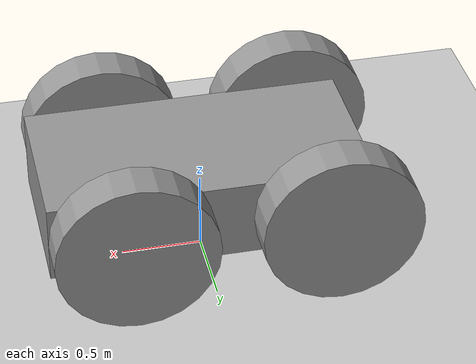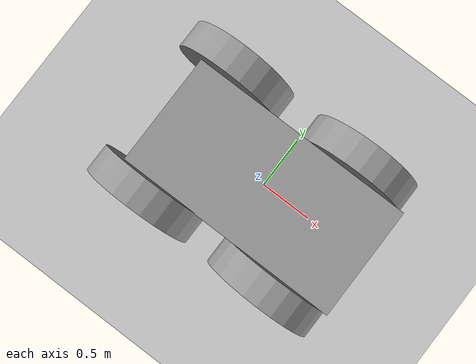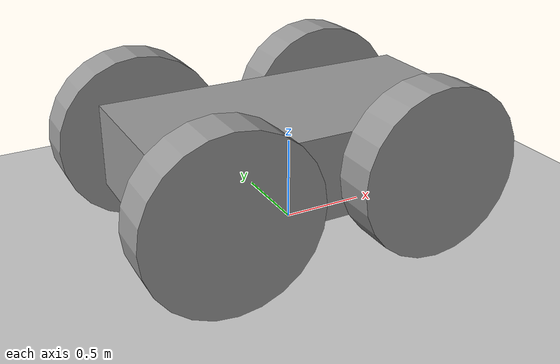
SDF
<sdf version="1.7">
 <world name="default">
  <light name="sun" type="directional">
   <pose>0 0 10 0 -0 0</pose>
   <diffuse>0.8 0.8 0.8 1</diffuse>
   <specular>0.2 0.2 0.2 1</specular>
   <attenuation>
    <range>1000</range>
    <constant>0.9</constant>
    <linear>0.01</linear>
    <quadratic>0.001</quadratic>
   </attenuation>
   <direction>-0.5 0.1 -0.9</direction>
   <spot><inner_angle>0</inner_angle><outer_angle>0</outer_angle><falloff>0</falloff></spot>
  </light>
  <model name="ground_plane">
   <static>1</static>
   <link name="link">
    <collision name="collision">
     <geometry><plane><normal>0 0 1</normal><size>100 100</size></plane></geometry>
     <surface>
      <contact><collide_bitmask>65535</collide_bitmask></contact>
      <friction><ode><mu>100</mu><mu2>50</mu2></ode></friction>
     </surface>
    </collision>
    <visual name="visual">
     <cast_shadows>0</cast_shadows>
     <geometry><plane><normal>0 0 1</normal><size>100 100</size></plane></geometry>
     <material>
      <script><uri>file://media/materials/scripts/gazebo.material</uri><name>Gazebo/Grey</name></script>
     </material>
    </visual>
   </link>
  </model>
  <gravity>0 0 -9.8</gravity>
  <magnetic_field>6e-06 2.3e-05 -4.2e-05</magnetic_field>
  <atmosphere type="adiabatic"/>
  <physics type="ode">
   <max_step_size>0.001</max_step_size>
   <real_time_factor>1</real_time_factor>
   <real_time_update_rate>1000</real_time_update_rate>
  </physics>
  <scene><ambient>0.4 0.4 0.4 1</ambient><background>0.7 0.7 0.7 1</background><shadows>1</shadows></scene>
  <audio><device>default</device></audio>
  <spherical_coordinates>
   <surface_model>EARTH_WGS84</surface_model>
   <latitude_deg>0</latitude_deg>
   <longitude_deg>0</longitude_deg>
   <elevation>0</elevation>
   <heading_deg>0</heading_deg>
  </spherical_coordinates>
  <model name="carModel">
   <link name="link">
    <inertial>
     <mass>1</mass>
     <inertia>
      <ixx>0.166667</ixx>
      <ixy>0</ixy>
      <ixz>0</ixz>
      <iyy>0.166667</iyy>
      <iyz>0</iyz>
      <izz>0.166667</izz>
     </inertia>
    </inertial>
    <visual name="visual">
     <geometry><box><size>2 1 0.5</size></box></geometry>
     <material>
      <script><name>Gazebo/Grey</name><uri>file://media/materials/scripts/gazebo.material</uri></script>
      <shader type="pixel"><normal_map>__default__</normal_map></shader>
      <ambient>0.3 0.3 0.3 1</ambient>
      <diffuse>0.7 0.7 0.7 1</diffuse>
      <specular>0.01 0.01 0.01 1</specular>
      <emissive>0 0 0 1</emissive>
     </material>
    </visual>
    <collision name="collision">
     <geometry><box><size>2 1 0.5</size></box></geometry>
     <surface>
      <friction>
       <ode><mu>1</mu><mu2>1</mu2><fdir1>0 0 0</fdir1><slip1>0</slip1><slip2>0</slip2></ode>
       <torsional>
        <coefficient>1</coefficient>
        <patch_radius>0</patch_radius>
        <surface_radius>0</surface_radius>
        <use_patch_radius>1</use_patch_radius>
        <ode><slip>0</slip></ode>
       </torsional>
      </friction>
      <bounce><restitution_coefficient>0</restitution_coefficient><threshold>1e+06</threshold></bounce>
      <contact>
       <collide_without_contact>0</collide_without_contact>
       <collide_without_contact_bitmask>1</collide_without_contact_bitmask>
       <collide_bitmask>1</collide_bitmask>
       <ode>
        <soft_cfm>0</soft_cfm>
        <soft_erp>0.2</soft_erp>
        <kp>1e+13</kp>
        <kd>1</kd>
        <max_vel>0.01</max_vel>
        <min_depth>0</min_depth>
       </ode>
       <bullet>
        <split_impulse>1</split_impulse>
        <split_impulse_penetration_threshold>-0.01</split_impulse_penetration_threshold>
        <soft_cfm>0</soft_cfm>
        <soft_erp>0.2</soft_erp>
        <kp>1e+13</kp>
        <kd>1</kd>
       </bullet>
      </contact>
     </surface>
    </collision>
   </link>
   <link name="link_0">
    <inertial>
     <mass>1</mass>
     <inertia><ixx>0.145833</ixx><ixy>0</ixy><ixz>0</ixz><iyy>0.145833</iyy><iyz>0</iyz><izz>0.125</izz></inertia>
    </inertial>
    <pose>-0.729219 -0.619535 -0 0 -0 0</pose>
    <visual name="visual">
     <pose>0 0 0 1.5707 -0 0</pose>
     <geometry><cylinder><radius>0.5</radius><length>0.25</length></cylinder></geometry>
     <material>
      <lighting>1</lighting>
      <script><uri>file://media/materials/scripts/gazebo.material</uri><name>Gazebo/Grey</name></script>
      <shader type="pixel"><normal_map>__default__</normal_map></shader>
      <ambient>0.3 0.3 0.3 1</ambient>
      <diffuse>0.7 0.7 0.7 1</diffuse>
      <specular>0.01 0.01 0.01 1</specular>
      <emissive>0 0 0 1</emissive>
     </material>
    </visual>
    <collision name="collision">
     <pose>0 0 0 1.5707 -0 0</pose>
     <geometry><cylinder><radius>0.5</radius><length>0.25</length></cylinder></geometry>
     <surface>
      <friction>
       <ode><mu>1</mu><mu2>1</mu2><fdir1>0 0 0</fdir1><slip1>0</slip1><slip2>0</slip2></ode>
       <torsional>
        <coefficient>1</coefficient>
        <patch_radius>0</patch_radius>
        <surface_radius>0</surface_radius>
        <use_patch_radius>1</use_patch_radius>
        <ode><slip>0</slip></ode>
       </torsional>
      </friction>
      <bounce><restitution_coefficient>0</restitution_coefficient><threshold>1e+06</threshold></bounce>
      <contact>
       <collide_without_contact>0</collide_without_contact>
       <collide_without_contact_bitmask>1</collide_without_contact_bitmask>
       <collide_bitmask>1</collide_bitmask>
       <ode>
        <soft_cfm>0</soft_cfm>
        <soft_erp>0.2</soft_erp>
        <kp>1e+13</kp>
        <kd>1</kd>
        <max_vel>0.01</max_vel>
        <min_depth>0</min_depth>
       </ode>
       <bullet>
        <split_impulse>1</split_impulse>
        <split_impulse_penetration_threshold>-0.01</split_impulse_penetration_threshold>
        <soft_cfm>0</soft_cfm>
        <soft_erp>0.2</soft_erp>
        <kp>1e+13</kp>
        <kd>1</kd>
       </bullet>
      </contact>
     </surface>
    </collision>
   </link>
   <link name="link_0_clone">
    <inertial>
     <mass>1</mass>
     <inertia><ixx>0.145833</ixx><ixy>0</ixy><ixz>0</ixz><iyy>0.145833</iyy><iyz>0</iyz><izz>0.125</izz></inertia>
    </inertial>
    <pose>0.5 -0.625048 -0 0 -0 0</pose>
    <visual name="visual">
     <pose>0 0 0 1.5707 -0 0</pose>
     <geometry><cylinder><radius>0.5</radius><length>0.25</length></cylinder></geometry>
     <material>
      <lighting>1</lighting>
      <script><uri>file://media/materials/scripts/gazebo.material</uri><name>Gazebo/Grey</name></script>
      <shader type="pixel"><normal_map>__default__</normal_map></shader>
      <ambient>0.3 0.3 0.3 1</ambient>
      <diffuse>0.7 0.7 0.7 1</diffuse>
      <specular>0.01 0.01 0.01 1</specular>
      <emissive>0 0 0 1</emissive>
     </material>
    </visual>
    <collision name="collision">
     <pose>0 0 0 1.5707 -0 0</pose>
     <geometry><cylinder><radius>0.5</radius><length>0.25</length></cylinder></geometry>
     <surface>
      <friction>
       <ode><mu>1</mu><mu2>1</mu2><fdir1>0 0 0</fdir1><slip1>0</slip1><slip2>0</slip2></ode>
       <torsional>
        <coefficient>1</coefficient>
        <patch_radius>0</patch_radius>
        <surface_radius>0</surface_radius>
        <use_patch_radius>1</use_patch_radius>
        <ode><slip>0</slip></ode>
       </torsional>
      </friction>
      <bounce><restitution_coefficient>0</restitution_coefficient><threshold>1e+06</threshold></bounce>
      <contact>
       <collide_without_contact>0</collide_without_contact>
       <collide_without_contact_bitmask>1</collide_without_contact_bitmask>
       <collide_bitmask>1</collide_bitmask>
       <ode>
        <soft_cfm>0</soft_cfm>
        <soft_erp>0.2</soft_erp>
        <kp>1e+13</kp>
        <kd>1</kd>
        <max_vel>0.01</max_vel>
        <min_depth>0</min_depth>
       </ode>
       <bullet>
        <split_impulse>1</split_impulse>
        <split_impulse_penetration_threshold>-0.01</split_impulse_penetration_threshold>
        <soft_cfm>0</soft_cfm>
        <soft_erp>0.2</soft_erp>
        <kp>1e+13</kp>
        <kd>1</kd>
       </bullet>
      </contact>
     </surface>
    </collision>
   </link>
   <link name="link_0_clone_0">
    <inertial>
     <mass>1</mass>
     <inertia><ixx>0.145833</ixx><ixy>0</ixy><ixz>0</ixz><iyy>0.145833</iyy><iyz>0</iyz><izz>0.125</izz></inertia>
    </inertial>
    <pose>0.5 0.625048 0 0 -0 0</pose>
    <visual name="visual">
     <pose>0 0 0 1.5707 -0 0</pose>
     <geometry><cylinder><radius>0.5</radius><length>0.25</length></cylinder></geometry>
     <material>
      <lighting>1</lighting>
      <script><uri>file://media/materials/scripts/gazebo.material</uri><name>Gazebo/Grey</name></script>
      <shader type="pixel"><normal_map>__default__</normal_map></shader>
      <ambient>0.3 0.3 0.3 1</ambient>
      <diffuse>0.7 0.7 0.7 1</diffuse>
      <specular>0.01 0.01 0.01 1</specular>
      <emissive>0 0 0 1</emissive>
     </material>
    </visual>
    <collision name="collision">
     <pose>0 0 0 1.5707 -0 0</pose>
     <geometry><cylinder><radius>0.5</radius><length>0.25</length></cylinder></geometry>
     <surface>
      <friction>
       <ode><mu>1</mu><mu2>1</mu2><fdir1>0 0 0</fdir1><slip1>0</slip1><slip2>0</slip2></ode>
       <torsional>
        <coefficient>1</coefficient>
        <patch_radius>0</patch_radius>
        <surface_radius>0</surface_radius>
        <use_patch_radius>1</use_patch_radius>
        <ode><slip>0</slip></ode>
       </torsional>
      </friction>
      <bounce><restitution_coefficient>0</restitution_coefficient><threshold>1e+06</threshold></bounce>
      <contact>
       <collide_without_contact>0</collide_without_contact>
       <collide_without_contact_bitmask>1</collide_without_contact_bitmask>
       <collide_bitmask>1</collide_bitmask>
       <ode>
        <soft_cfm>0</soft_cfm>
        <soft_erp>0.2</soft_erp>
        <kp>1e+13</kp>
        <kd>1</kd>
        <max_vel>0.01</max_vel>
        <min_depth>0</min_depth>
       </ode>
       <bullet>
        <split_impulse>1</split_impulse>
        <split_impulse_penetration_threshold>-0.01</split_impulse_penetration_threshold>
        <soft_cfm>0</soft_cfm>
        <soft_erp>0.2</soft_erp>
        <kp>1e+13</kp>
        <kd>1</kd>
       </bullet>
      </contact>
     </surface>
    </collision>
   </link>
   <link name="link_0_clone_1">
    <inertial>
     <mass>1</mass>
     <inertia><ixx>0.145833</ixx><ixy>0</ixy><ixz>0</ixz><iyy>0.145833</iyy><iyz>0</iyz><izz>0.125</izz></inertia>
    </inertial>
    <pose>-0.75 0.625048 0 0 -0 0</pose>
    <visual name="visual">
     <pose>0 0 0 1.5707 -0 0</pose>
     <geometry><cylinder><radius>0.5</radius><length>0.25</length></cylinder></geometry>
     <material>
      <lighting>1</lighting>
      <script><uri>file://media/materials/scripts/gazebo.material</uri><name>Gazebo/Grey</name></script>
      <shader type="pixel"><normal_map>__default__</normal_map></shader>
      <ambient>0.3 0.3 0.3 1</ambient>
      <diffuse>0.7 0.7 0.7 1</diffuse>
      <specular>0.01 0.01 0.01 1</specular>
      <emissive>0 0 0 1</emissive>
     </material>
    </visual>
    <collision name="collision">
     <pose>0 0 0 1.5707 -0 0</pose>
     <geometry><cylinder><radius>0.5</radius><length>0.25</length></cylinder></geometry>
     <surface>
      <friction>
       <ode><mu>1</mu><mu2>1</mu2><fdir1>0 0 0</fdir1><slip1>0</slip1><slip2>0</slip2></ode>
       <torsional>
        <coefficient>1</coefficient>
        <patch_radius>0</patch_radius>
        <surface_radius>0</surface_radius>
        <use_patch_radius>1</use_patch_radius>
        <ode><slip>0</slip></ode>
       </torsional>
      </friction>
      <bounce><restitution_coefficient>0</restitution_coefficient><threshold>1e+06</threshold></bounce>
      <contact>
       <collide_without_contact>0</collide_without_contact>
       <collide_without_contact_bitmask>1</collide_without_contact_bitmask>
       <collide_bitmask>1</collide_bitmask>
       <ode>
        <soft_cfm>0</soft_cfm>
        <soft_erp>0.2</soft_erp>
        <kp>1e+13</kp>
        <kd>1</kd>
        <max_vel>0.01</max_vel>
        <min_depth>0</min_depth>
       </ode>
       <bullet>
        <split_impulse>1</split_impulse>
        <split_impulse_penetration_threshold>-0.01</split_impulse_penetration_threshold>
        <soft_cfm>0</soft_cfm>
        <soft_erp>0.2</soft_erp>
        <kp>1e+13</kp>
        <kd>1</kd>
       </bullet>
      </contact>
     </surface>
    </collision>
   </link>
   <joint name="link_JOINT_0" type="revolute">
    <parent>link</parent>
    <child>link_0</child>
    <axis>
     <xyz>0 1 0</xyz>
     <limit>
      <lower>-1.79769e+308</lower>
      <upper>1.79769e+308</upper>
      <effort>-1</effort>
      <velocity>-1</velocity>
     </limit>
     <dynamics>
      <spring_reference>0</spring_reference>
      <spring_stiffness>0</spring_stiffness>
      <damping>0</damping>
      <friction>0</friction>
     </dynamics>
    </axis>
    <physics>
     <ode><limit><cfm>0</cfm><erp>0.2</erp></limit><suspension><cfm>0</cfm><erp>0.2</erp></suspension></ode>
    </physics>
   </joint>
   <joint name="link_JOINT_1" type="revolute">
    <parent>link</parent>
    <child>link_0_clone</child>
    <axis>
     <xyz>0 1 0</xyz>
     <limit>
      <lower>-1.79769e+308</lower>
      <upper>1.79769e+308</upper>
      <effort>-1</effort>
      <velocity>-1</velocity>
     </limit>
     <dynamics>
      <spring_reference>0</spring_reference>
      <spring_stiffness>0</spring_stiffness>
      <damping>0</damping>
     </dynamics>
    </axis>
    <physics>
     <ode><limit><cfm>0</cfm><erp>0.2</erp></limit><suspension><cfm>0</cfm><erp>0.2</erp></suspension></ode>
    </physics>
   </joint>
   <joint name="link_JOINT_2" type="revolute">
    <parent>link</parent>
    <child>link_0_clone_0</child>
    <axis>
     <xyz>0 1 0</xyz>
     <limit>
      <lower>-1.79769e+308</lower>
      <upper>1.79769e+308</upper>
      <effort>-1</effort>
      <velocity>-1</velocity>
     </limit>
     <dynamics>
      <spring_reference>0</spring_reference>
      <spring_stiffness>0</spring_stiffness>
      <damping>0</damping>
     </dynamics>
    </axis>
    <physics>
     <ode><limit><cfm>0</cfm><erp>0.2</erp></limit><suspension><cfm>0</cfm><erp>0.2</erp></suspension></ode>
    </physics>
   </joint>
   <joint name="link_JOINT_3" type="revolute">
    <parent>link</parent>
    <child>link_0_clone_1</child>
    <axis>
     <xyz>0 1 0</xyz>
     <limit>
      <lower>-1.79769e+308</lower>
      <upper>1.79769e+308</upper>
      <effort>-1</effort>
      <velocity>-1</velocity>
     </limit>
     <dynamics>
      <spring_reference>0</spring_reference>
      <spring_stiffness>0</spring_stiffness>
      <damping>0</damping>
     </dynamics>
    </axis>
    <physics>
     <ode><limit><cfm>0</cfm><erp>0.2</erp></limit><suspension><cfm>0</cfm><erp>0.2</erp></suspension></ode>
    </physics>
   </joint>
   <static>0</static>
   <pose>0.012278 -0.041601 0.5 0 -0 0</pose>
  </model>
  <light name="user_spot_light_0" type="spot">
   <pose>-0.016338 -1.39276 1 0 -0 0</pose>
   <diffuse>0.5 0.5 0.5 1</diffuse>
   <specular>0.1 0.1 0.1 1</specular>
   <direction>0 0 -1</direction>
   <attenuation>
    <range>20</range>
    <constant>0.5</constant>
    <linear>0.01</linear>
    <quadratic>0.001</quadratic>
   </attenuation>
   <cast_shadows>0</cast_shadows>
   <spot><inner_angle>0.6</inner_angle><outer_angle>1</outer_angle><falloff>1</falloff></spot>
  </light>
 </world>
</sdf>
